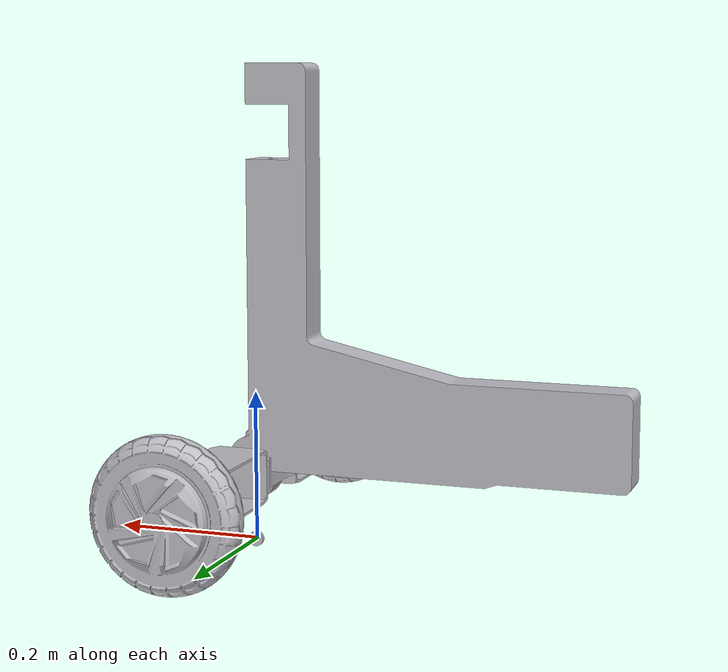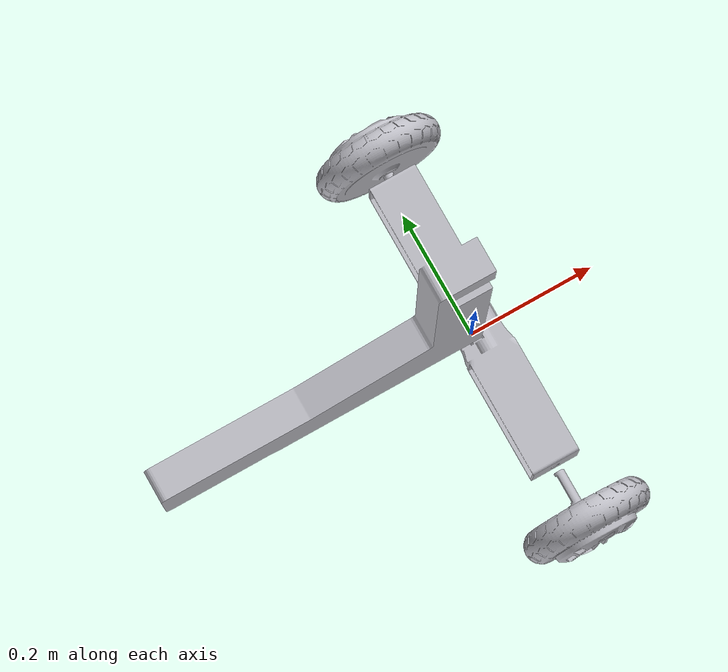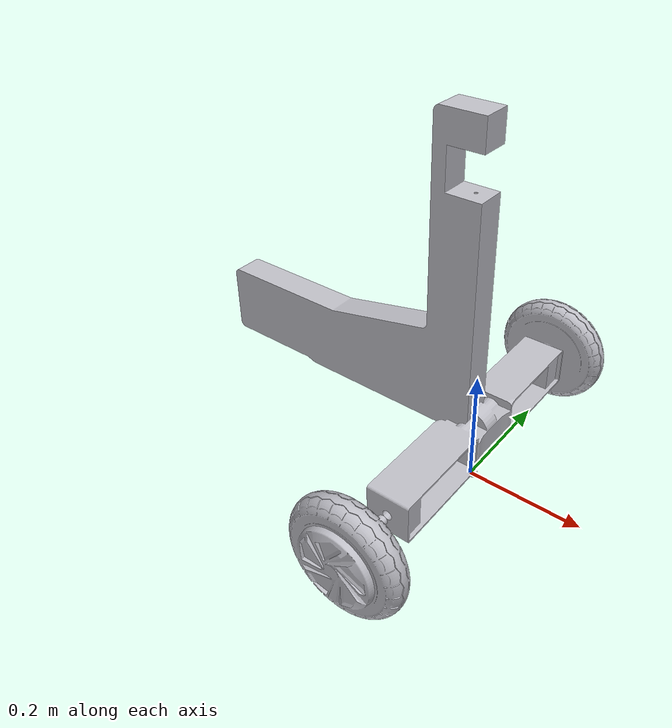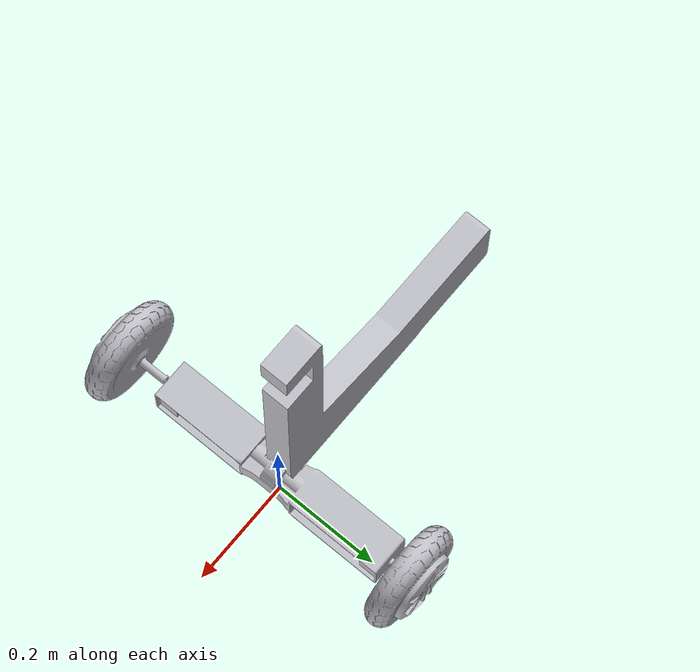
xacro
<?xml version="1.0" ?>
<robot name="SMART-TROLLEY_V5" xmlns:xacro="http://www.ros.org/wiki/xacro">

<xacro:include filename="$(find my_bot4_js)/description/materials.xacro" />
<xacro:include filename="$(find my_bot4_js)/description/SMART-TROLLEY_V5.trans" />
<xacro:include filename="$(find my_bot4_js)/description/SMART-TROLLEY_V5.gazebo" />
<link name="base_link">
  <inertial>
    <origin xyz="0.0 0.0025 -1.4135798584282298e-18" rpy="0 0 0"/>
    <mass value="0.012330751165339937"/>
    <inertia ixx="0.0" iyy="1e-06" izz="0.0" ixy="0.0" iyz="-0.0" ixz="0.0"/>
  </inertial>
  <visual>
    <origin xyz="0 0 0" rpy="0 0 0"/>
    <geometry>
      <mesh filename="file://$(find my_bot4_js)/meshes/base_link.stl" scale="0.001 0.001 0.001"/>
    </geometry>
    <material name="silver"/>
  </visual>
  <collision>
    <origin xyz="0 0 0" rpy="0 0 0"/>
    <geometry>
      <mesh filename="file://$(find my_bot4_js)/meshes/base_link.stl" scale="0.001 0.001 0.001"/>
    </geometry>
  </collision>
</link>

<link name="left_wheel_1">
  <inertial>
    <origin xyz="0.09990876350575989 0.2757195754593127 -0.23592849666122193" rpy="0 0 0"/>
    <mass value="1.3312484882428781"/>
    <inertia ixx="0.003087" iyy="0.005539" izz="0.003087" ixy="-0.0" iyz="-1e-06" ixz="0.0"/>
  </inertial>
  <visual>
    <origin xyz="0.099914 -0.000901 -0.335814" rpy="0 0 0"/>
    <geometry>
      <mesh filename="file://$(find my_bot4_js)/meshes/left_wheel_1.stl" scale="0.001 0.001 0.001"/>
    </geometry>
    <material name="silver"/>
  </visual>
  <collision>
    <origin xyz="0.099914 -0.000901 -0.335814" rpy="0 0 0"/>
    <geometry>
      <mesh filename="file://$(find my_bot4_js)/meshes/left_wheel_1.stl" scale="0.001 0.001 0.001"/>
    </geometry>
  </collision>
</link>

<link name="right_wheel_1">
  <inertial>
    <origin xyz="0.10017758929019482 -0.32572034337329986 0.23440912117154092" rpy="0 0 0"/>
    <mass value="1.331249101131284"/>
    <inertia ixx="0.003087" iyy="0.005539" izz="0.003087" ixy="-0.0" iyz="-1e-06" ixz="-0.0"/>
  </inertial>
  <visual>
    <origin xyz="0.100173 -0.000641 0.134186" rpy="0 0 0"/>
    <geometry>
      <mesh filename="file://$(find my_bot4_js)/meshes/right_wheel_1.stl" scale="0.001 0.001 0.001"/>
    </geometry>
    <material name="silver"/>
  </visual>
  <collision>
    <origin xyz="0.100173 -0.000641 0.134186" rpy="0 0 0"/>
    <geometry>
      <mesh filename="file://$(find my_bot4_js)/meshes/right_wheel_1.stl" scale="0.001 0.001 0.001"/>
    </geometry>
  </collision>
</link>

<link name="chassis_1">
  <inertial>
    <origin xyz="-0.16234313440897566 0.000839362743162796 0.22494260544094216" rpy="0 0 0"/>
    <mass value="15.301157428367338"/>
    <inertia ixx="0.321455" iyy="0.643182" izz="0.424982" ixy="-5.2e-05" iyz="-0.00012" ixz="-0.093804"/>
  </inertial>
  <visual>
    <origin xyz="0 0 0" rpy="0 0 0"/>
    <geometry>
      <mesh filename="file://$(find my_bot4_js)/meshes/chassis_1.stl" scale="0.001 0.001 0.001"/>
    </geometry>
    <material name="silver"/>
  </visual>
  <collision>
    <origin xyz="0 0 0" rpy="0 0 0"/>
    <geometry>
      <mesh filename="file://$(find my_bot4_js)/meshes/chassis_1.stl" scale="0.001 0.001 0.001"/>
    </geometry>
  </collision>
</link>

<joint name="base_to_chassis" type="fixed">
  <origin xyz="0 0 0" rpy="0 0 0"/>
  <parent link="base_link"/>
  <child link="chassis_1"/>
</joint>

<joint name="left_wheel_joint" type="continuous">
  <origin xyz="-0.099914 0.000901 0.335814" rpy="0 0 0"/>
  <parent link="chassis_1"/>
  <child link="left_wheel_1"/>
  <axis xyz="-0.0 1.0 -0.000551"/>
</joint>

<joint name="right_wheel_joint" type="continuous">
  <origin xyz="-0.100173 0.000641 -0.134186" rpy="0 0 0"/>
  <parent link="chassis_1"/>
  <child link="right_wheel_1"/>
  <axis xyz="0.0 -1.0 0.000551"/>
</joint>

</robot>

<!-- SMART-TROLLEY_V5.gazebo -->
<robot name="SMART-TROLLEY_V5" xmlns:xacro="http://www.ros.org/wiki/xacro" >

<xacro:property name="body_color" value="Gazebo/Silver" />

<gazebo>
  <plugin name="control" filename="libgazebo_ros_control.so"/>
</gazebo>
<gazebo reference="base_link">
  <material>${body_color}</material>
  <mu1>0.2</mu1>
  <mu2>0.2</mu2>
  <self_collide>true</self_collide>
  <gravity>true</gravity>
</gazebo>

<gazebo reference="left_wheel_1">
  <material>${body_color}</material>
  <mu1>0.2</mu1>
  <mu2>0.2</mu2>
  <self_collide>true</self_collide>
</gazebo>

<gazebo reference="right_wheel_1">
  <material>${body_color}</material>
  <mu1>0.2</mu1>
  <mu2>0.2</mu2>
  <self_collide>true</self_collide>
</gazebo>

</robot>
